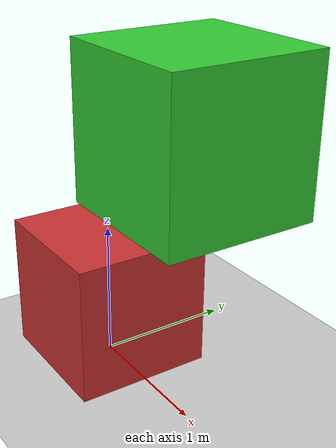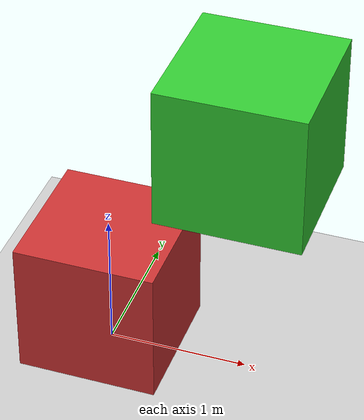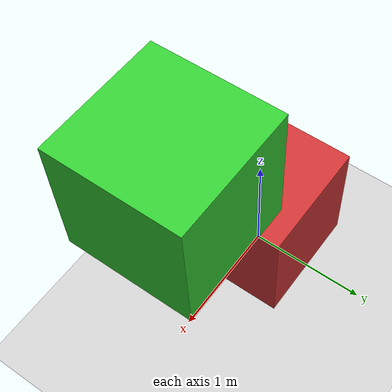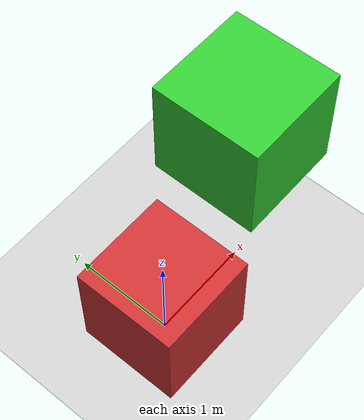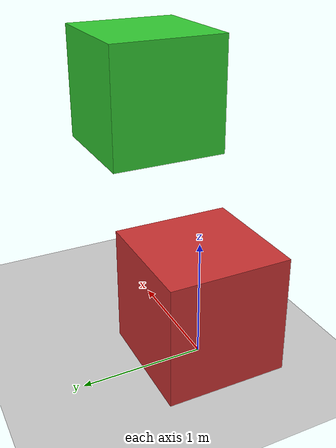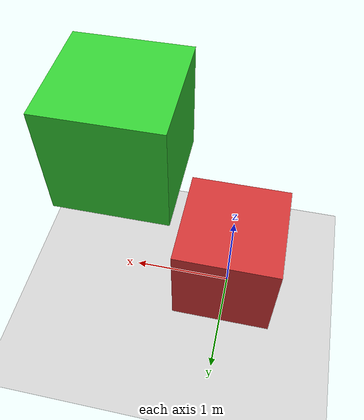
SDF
<?xml version="1.0" ?>
<sdf version="1.6">
  <world name="default">

    <!--common plugins-->
    <physics name="1ms" type="ignored">
      <max_step_size>0.001</max_step_size>
      <real_time_factor>1.0</real_time_factor>
    </physics>
    <plugin
      filename="gz-sim-physics-system"
      name="gz::sim::systems::Physics">
    </plugin>
    <plugin
      filename="gz-sim-sensors-system"
      name="gz::sim::systems::Sensors">
      <render_engine>ogre2</render_engine>
    </plugin>
    <plugin
      filename="gz-sim-user-commands-system"
      name="gz::sim::systems::UserCommands">
    </plugin>
    <plugin
      filename="gz-sim-scene-broadcaster-system"
      name="gz::sim::systems::SceneBroadcaster">
    </plugin>

    <!--attachable joint plugin-->
    <plugin filename="libattachable_joint_plugin.so" name="attachable_joint::AttachableJoint">
        <attachtopic>/attach</attachtopic>
    </plugin>

    <!-- light -->
    <light type="directional" name="sun">
      <cast_shadows>false</cast_shadows>
      <pose>0 0 10 0 0 0</pose>
      <diffuse>0.8 0.8 0.8 1</diffuse>
      <specular>0.2 0.2 0.2 1</specular>
      <attenuation>
        <range>1000</range>
        <constant>0.9</constant>
        <linear>0.01</linear>
        <quadratic>0.001</quadratic>
      </attenuation>
      <direction>-0.5 0.1 -0.9</direction>
    </light>

    <!--box1 -->
    <model name="box1">
        <static>false</static>
        <pose>0 0 0.5 0 0 0</pose>
        <link name="box_body">
        <visual name="v1">
            <geometry>
            <box><size>1 1 1</size></box>
            </geometry>
            <material>
            <diffuse>0.8 0.2 0.2 1</diffuse>
            <specular>1.0 0 0 1</specular>
            </material>
        </visual>
        <collision name="c1">
            <geometry>
            <box><size>1 1 1</size></box>
            </geometry>
        </collision>
        </link>
    </model>

    <!--box2 -->
    <model name="box2">
        <static>false</static>
        <pose>1 0 2 0 0 0</pose>
        <link name="box_body">
        <visual name="v1">
            <geometry>
            <box><size>1 1 1</size></box>
            </geometry>
            <material>
            <diffuse>0.2 0.8 0.2 1</diffuse>
            <specular>1.0 0 0 1</specular>
            </material>
        </visual>
        <collision name="c1">
            <geometry>
            <box><size>1 1 1</size></box>
            </geometry>
        </collision>
        </link>
    </model>

    <!-- ground -->
    <model name="ground_plane">
      <static>true</static>
      <link name="link">
        <collision name="collision">
          <geometry>
            <plane>
              <normal>0 0 1</normal>
            </plane>
          </geometry>
        </collision>
        <visual name="visual">
          <geometry>
            <plane>
              <normal>0 0 1</normal>
              <size>100 100</size>
            </plane>
          </geometry>
          <material>
            <ambient>0.8 0.8 0.8 1</ambient>
            <diffuse>0.8 0.8 0.8 1</diffuse>
            <specular>0.8 0.8 0.8 1</specular>
          </material>
        </visual>
      </link>
    </model>
  </world>

</sdf>
